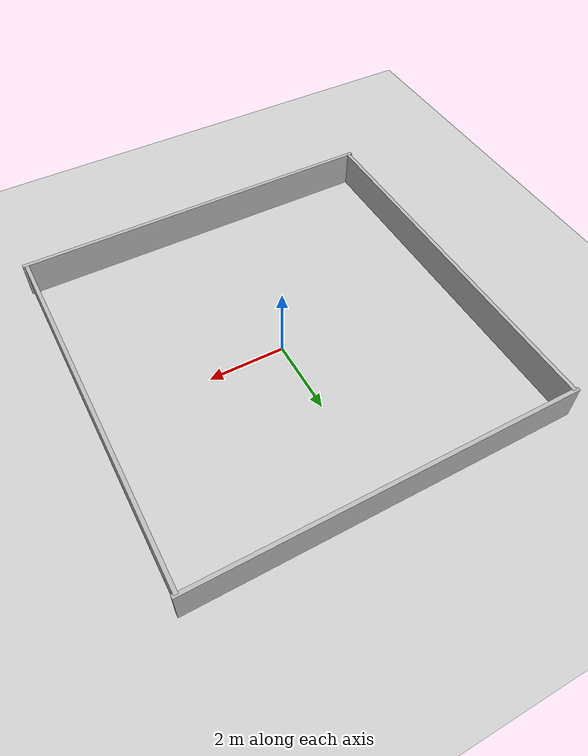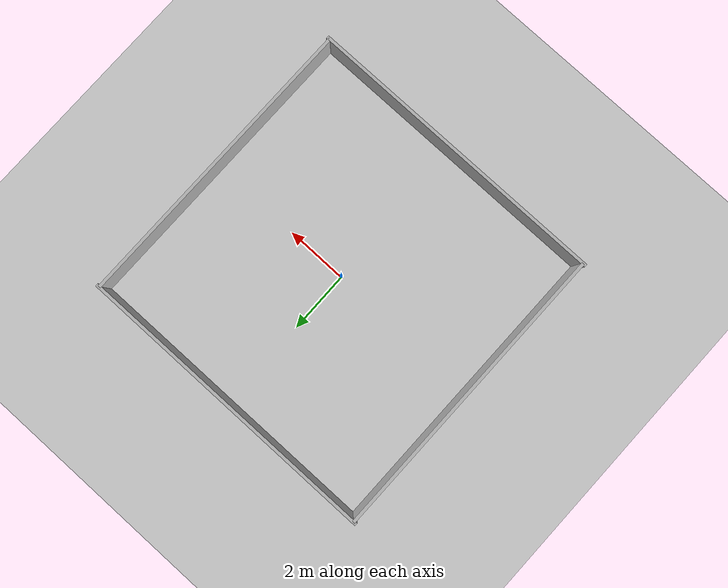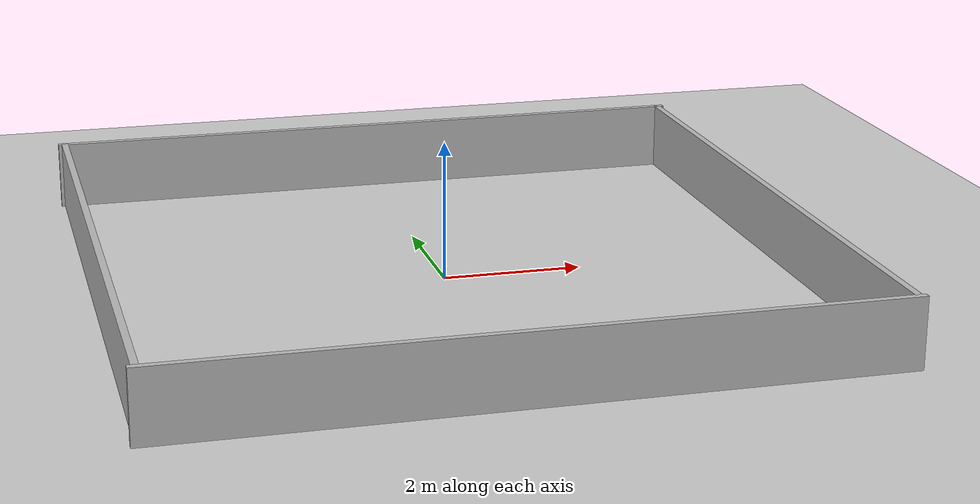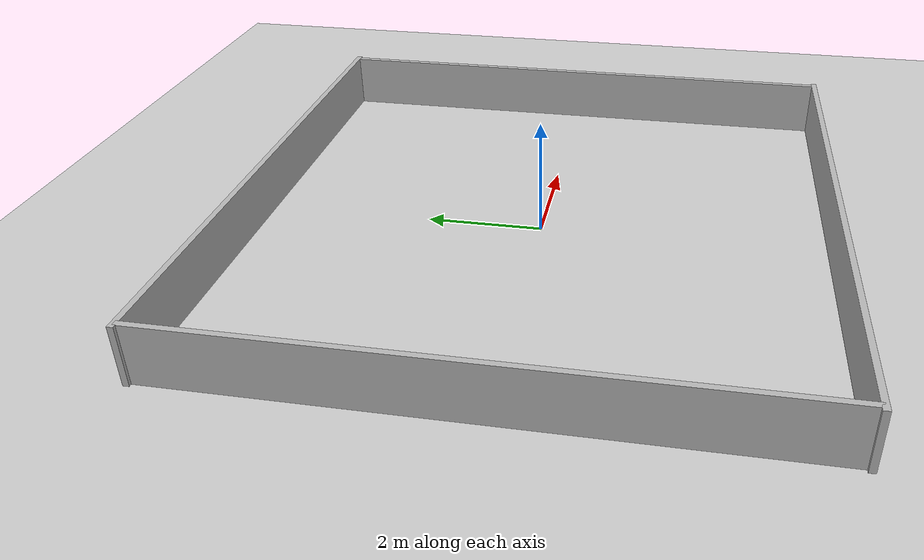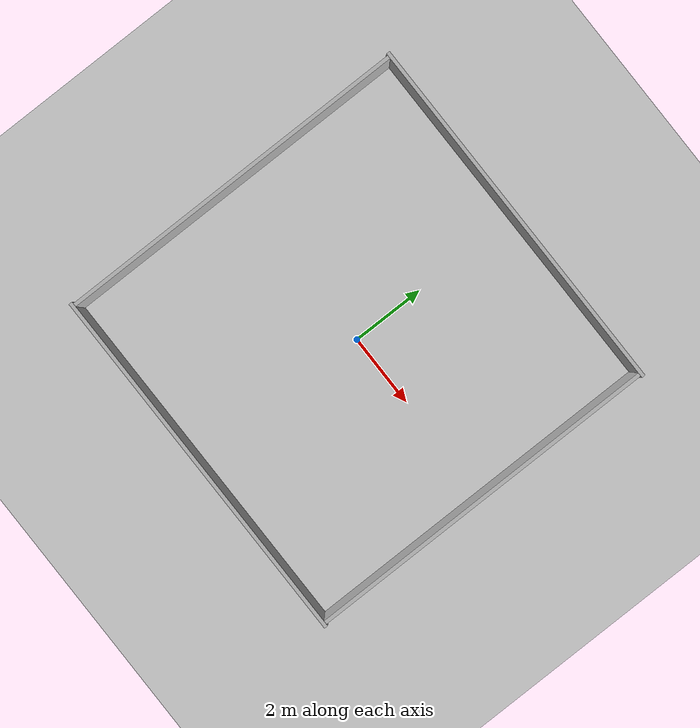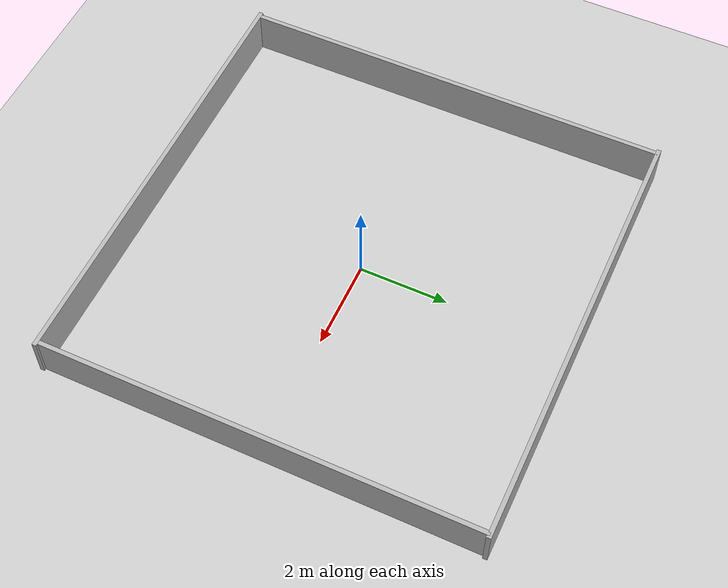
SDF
<?xml version="1.0"?>
<sdf version="1.6">
  <world name="empty_room">
    <physics name="default_physics" type="ode">
      <real_time_update_rate>1000.0</real_time_update_rate>
      <max_step_size>0.001</max_step_size>
    </physics>
    <include><uri>model://sun</uri></include>
    <include><uri>model://ground_plane</uri></include>

    <model name="north_wall">
      <static>true</static><pose>0 4.9 0.5 0 0 0</pose>
      <link name="link"><collision name="collision"><geometry><box><size>10 0.1 1</size></box></geometry></collision><visual name="visual"><geometry><box><size>10 0.1 1</size></box></geometry></visual></link>
    </model>
    <model name="south_wall">
      <static>true</static><pose>0 -4.9 0.5 0 0 0</pose>
      <link name="link"><collision name="collision"><geometry><box><size>10 0.1 1</size></box></geometry></collision><visual name="visual"><geometry><box><size>10 0.1 1</size></box></geometry></visual></link>
    </model>
    <model name="east_wall">
      <static>true</static><pose>4.9 0 0.5 0 0 0</pose>
      <link name="link"><collision name="collision"><geometry><box><size>0.1 9.8 1</size></box></geometry></collision><visual name="visual"><geometry><box><size>0.1 9.8 1</size></box></geometry></visual></link>
    </model>
    <model name="west_wall">
      <static>true</static><pose>-4.9 0 0.5 0 0 0</pose>
      <link name="link"><collision name="collision"><geometry><box><size>0.1 9.8 1</size></box></geometry></collision><visual name="visual"><geometry><box><size>0.1 9.8 1</size></box></geometry></visual></link>
    </model>
  </world>
</sdf>
